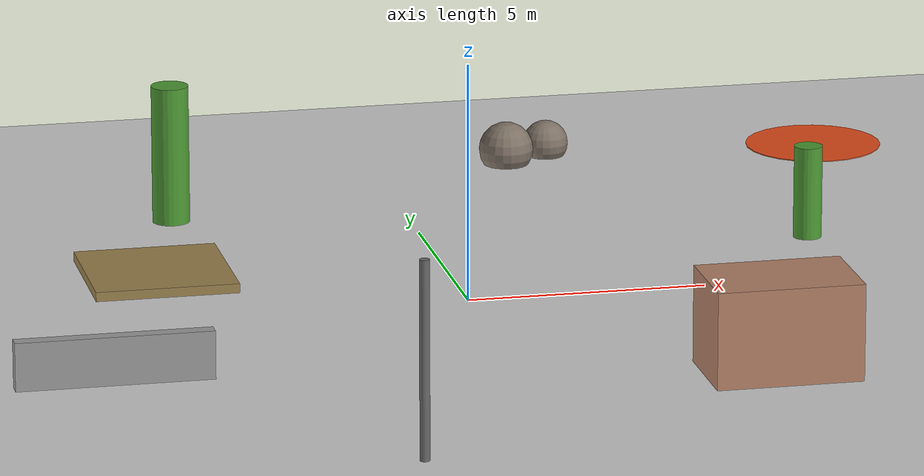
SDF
<sdf version="1.6">
 <world name="gnns_drone_world">
  <physics name="default_physics" default="0" type="ode">
   <max_step_size>0.001</max_step_size>
   <real_time_factor>1</real_time_factor>
   <real_time_update_rate>1000</real_time_update_rate>
  </physics>
  <scene><ambient>0.6 0.6 0.6 1</ambient><background>0.4 0.6 0.9 1</background><shadows>true</shadows></scene>
  <include><uri>model://sun</uri></include>
  <model name="ground_plane">
   <static>true</static>
   <link name="link">
    <collision name="collision">
     <geometry><plane><normal>0 0 1</normal><size>100 100</size></plane></geometry>
    </collision>
    <visual name="visual">
     <geometry><plane><normal>0 0 1</normal><size>100 100</size></plane></geometry>
     <material>
      <script><uri>file://media/materials/scripts/gazebo.material</uri><name>Gazebo/Grey</name></script>
     </material>
    </visual>
   </link>
  </model>
  <model name="tree_1">
   <static>true</static>
   <pose>8 3 1 0 0 0</pose>
   <link name="link">
    <collision name="collision">
     <geometry><cylinder><radius>0.3</radius><length>2</length></cylinder></geometry>
    </collision>
    <visual name="visual">
     <geometry><cylinder><radius>0.3</radius><length>2</length></cylinder></geometry>
     <material><ambient>0.2 0.5 0.1 1</ambient><diffuse>0.3 0.6 0.2 1</diffuse></material>
    </visual>
   </link>
  </model>
  <model name="tree_2">
   <static>true</static>
   <pose>-5 7 1.5 0 0 0</pose>
   <link name="link">
    <collision name="collision">
     <geometry><cylinder><radius>0.4</radius><length>3</length></cylinder></geometry>
    </collision>
    <visual name="visual">
     <geometry><cylinder><radius>0.4</radius><length>3</length></cylinder></geometry>
     <material><ambient>0.2 0.5 0.1 1</ambient><diffuse>0.3 0.6 0.2 1</diffuse></material>
    </visual>
   </link>
  </model>
  <model name="building_1">
   <static>true</static>
   <pose>5 -6 1 0 0 0</pose>
   <link name="link">
    <collision name="collision"><geometry><box><size>3 2 2</size></box></geometry></collision>
    <visual name="visual">
     <geometry><box><size>3 2 2</size></box></geometry>
     <material><ambient>0.6 0.4 0.3 1</ambient><diffuse>0.7 0.5 0.4 1</diffuse></material>
    </visual>
   </link>
  </model>
  <model name="wall_1">
   <static>true</static>
   <pose>-8 -4 0.5 0 0 0</pose>
   <link name="link">
    <collision name="collision"><geometry><box><size>4 0.3 1</size></box></geometry></collision>
    <visual name="visual">
     <geometry><box><size>4 0.3 1</size></box></geometry>
     <material><ambient>0.5 0.5 0.5 1</ambient><diffuse>0.6 0.6 0.6 1</diffuse></material>
    </visual>
   </link>
  </model>
  <model name="rock_1">
   <static>true</static>
   <pose>3 10 0.3 0 0 0</pose>
   <link name="link">
    <collision name="collision"><geometry><sphere><radius>0.6</radius></sphere></geometry></collision>
    <visual name="visual">
     <geometry><sphere><radius>0.6</radius></sphere></geometry>
     <material><ambient>0.4 0.35 0.3 1</ambient><diffuse>0.5 0.45 0.4 1</diffuse></material>
    </visual>
   </link>
  </model>
  <model name="rock_2">
   <static>true</static>
   <pose>4 10.5 0.25 0 0 0</pose>
   <link name="link">
    <collision name="collision"><geometry><sphere><radius>0.5</radius></sphere></geometry></collision>
    <visual name="visual">
     <geometry><sphere><radius>0.5</radius></sphere></geometry>
     <material><ambient>0.4 0.35 0.3 1</ambient><diffuse>0.5 0.45 0.4 1</diffuse></material>
    </visual>
   </link>
  </model>
  <model name="pole_1">
   <static>true</static>
   <pose>-3 -10 2 0 0 0</pose>
   <link name="link">
    <collision name="collision">
     <geometry><cylinder><radius>0.1</radius><length>4</length></cylinder></geometry>
    </collision>
    <visual name="visual">
     <geometry><cylinder><radius>0.1</radius><length>4</length></cylinder></geometry>
     <material><ambient>0.3 0.3 0.3 1</ambient><diffuse>0.4 0.4 0.4 1</diffuse></material>
    </visual>
   </link>
  </model>
  <model name="rough_terrain_1">
   <static>true</static>
   <pose>-6 3 0.1 0 0 0</pose>
   <link name="link">
    <collision name="collision"><geometry><box><size>3 3 0.2</size></box></geometry></collision>
    <visual name="visual">
     <geometry><box><size>3 3 0.2</size></box></geometry>
     <material><ambient>0.5 0.4 0.2 1</ambient><diffuse>0.6 0.5 0.3 1</diffuse></material>
    </visual>
   </link>
  </model>
  <model name="landing_pad">
   <static>true</static>
   <pose>10 10 0.01 0 0 0</pose>
   <link name="link">
    <collision name="collision">
     <geometry><cylinder><radius>1.5</radius><length>0.02</length></cylinder></geometry>
    </collision>
    <visual name="visual">
     <geometry><cylinder><radius>1.5</radius><length>0.02</length></cylinder></geometry>
     <material><ambient>0.8 0.2 0.1 1</ambient><diffuse>0.9 0.3 0.1 1</diffuse></material>
    </visual>
   </link>
  </model>
 </world>
</sdf>
